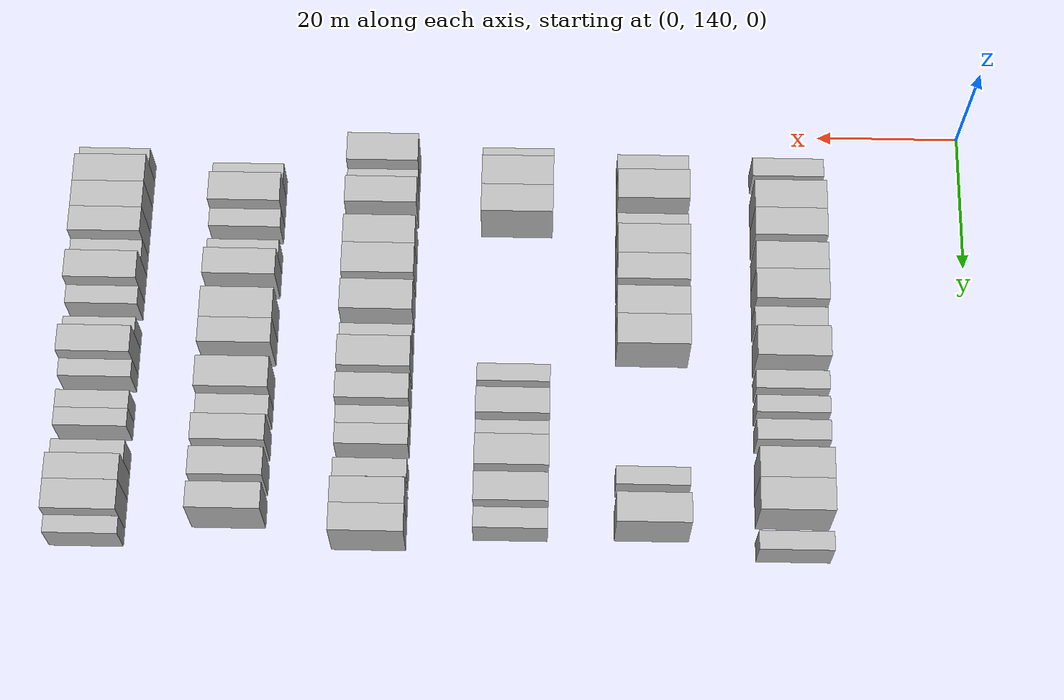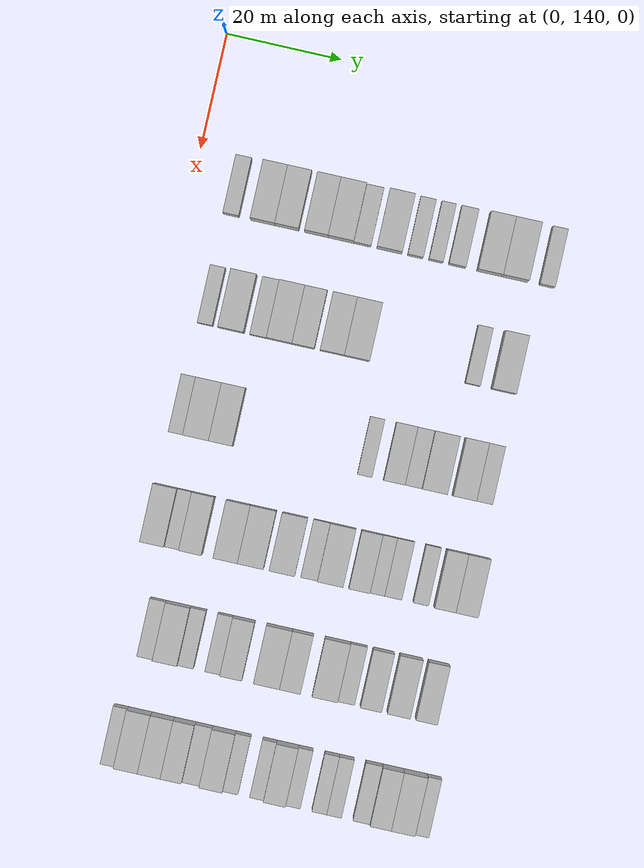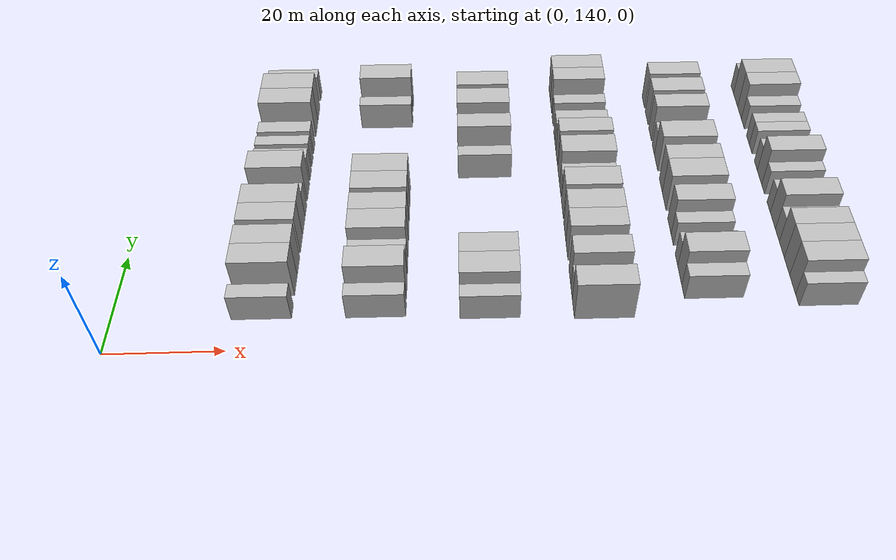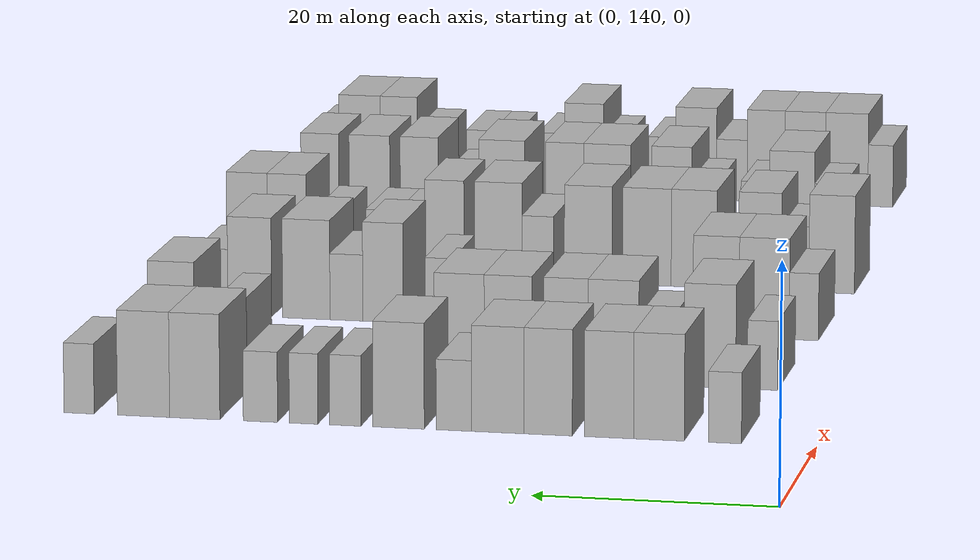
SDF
<sdf version="1.6">
 <world name="default">
  <model name="building_131">
   <static>1</static>
   <pose>25.0000 147.6071 0 0.000000 0.000000 0.000000</pose>
   <link name="link">
    <pose>0 0 3.00 0 0 0</pose>
    <collision name="collision"><geometry><box><size>10.0000 2.7516 6.0000</size></box></geometry></collision>
    <visual name="visual">
     <cast_shadows>0</cast_shadows>
     <geometry><box><size>10.0000 2.7516 6.0000</size></box></geometry>
     <material>
      <script>
       <uri>model://HANNAS_wall/materials/scripts</uri>
       <uri>model://HANNAS_wall/materials/textures</uri>
       <name>vrc/HANNAS_wall</name>
      </script>
     </material>
    </visual>
   </link>
  </model>
  <model name="building_132">
   <static>1</static>
   <pose>25.0000 153.0989 0 0.000000 0.000000 0.000000</pose>
   <link name="link">
    <pose>0 0 4.50 0 0 0</pose>
    <collision name="collision"><geometry><box><size>10.0000 4.2320 9.0000</size></box></geometry></collision>
    <visual name="visual">
     <cast_shadows>0</cast_shadows>
     <geometry><box><size>10.0000 4.2320 9.0000</size></box></geometry>
     <material>
      <script>
       <uri>model://HANNAS_wall/materials/scripts</uri>
       <uri>model://HANNAS_wall/materials/textures</uri>
       <name>vrc/HANNAS_wall</name>
      </script>
     </material>
    </visual>
   </link>
  </model>
  <model name="building_133">
   <static>1</static>
   <pose>25.0000 157.2764 0 0.000000 0.000000 0.000000</pose>
   <link name="link">
    <pose>0 0 4.50 0 0 0</pose>
    <collision name="collision"><geometry><box><size>10.0000 4.1229 9.0000</size></box></geometry></collision>
    <visual name="visual">
     <cast_shadows>0</cast_shadows>
     <geometry><box><size>10.0000 4.1229 9.0000</size></box></geometry>
     <material>
      <script>
       <uri>model://HANNAS_wall/materials/scripts</uri>
       <uri>model://HANNAS_wall/materials/textures</uri>
       <name>vrc/HANNAS_wall</name>
      </script>
     </material>
    </visual>
   </link>
  </model>
  <model name="building_134">
   <static>1</static>
   <pose>25.0000 162.3675 0 0.000000 0.000000 0.000000</pose>
   <link name="link">
    <pose>0 0 4.50 0 0 0</pose>
    <collision name="collision"><geometry><box><size>10.0000 4.0594 9.0000</size></box></geometry></collision>
    <visual name="visual">
     <cast_shadows>0</cast_shadows>
     <geometry><box><size>10.0000 4.0594 9.0000</size></box></geometry>
     <material>
      <script>
       <uri>model://HANNAS_wall/materials/scripts</uri>
       <uri>model://HANNAS_wall/materials/textures</uri>
       <name>vrc/HANNAS_wall</name>
      </script>
     </material>
    </visual>
   </link>
  </model>
  <model name="building_135">
   <static>1</static>
   <pose>25.0000 166.6109 0 0.000000 0.000000 0.000000</pose>
   <link name="link">
    <pose>0 0 4.50 0 0 0</pose>
    <collision name="collision"><geometry><box><size>10.0000 4.4273 9.0000</size></box></geometry></collision>
    <visual name="visual">
     <cast_shadows>0</cast_shadows>
     <geometry><box><size>10.0000 4.4273 9.0000</size></box></geometry>
     <material>
      <script>
       <uri>model://HANNAS_wall/materials/scripts</uri>
       <uri>model://HANNAS_wall/materials/textures</uri>
       <name>vrc/HANNAS_wall</name>
      </script>
     </material>
    </visual>
   </link>
  </model>
  <model name="building_136">
   <static>1</static>
   <pose>25.0000 170.3125 0 0.000000 0.000000 0.000000</pose>
   <link name="link">
    <pose>0 0 3.00 0 0 0</pose>
    <collision name="collision"><geometry><box><size>10.0000 2.9758 6.0000</size></box></geometry></collision>
    <visual name="visual">
     <cast_shadows>0</cast_shadows>
     <geometry><box><size>10.0000 2.9758 6.0000</size></box></geometry>
     <material>
      <script>
       <uri>model://HANNAS_wall/materials/scripts</uri>
       <uri>model://HANNAS_wall/materials/textures</uri>
       <name>vrc/HANNAS_wall</name>
      </script>
     </material>
    </visual>
   </link>
  </model>
  <model name="building_137">
   <static>1</static>
   <pose>25.0000 174.9734 0 0.000000 0.000000 0.000000</pose>
   <link name="link">
    <pose>0 0 4.50 0 0 0</pose>
    <collision name="collision"><geometry><box><size>10.0000 4.3461 9.0000</size></box></geometry></collision>
    <visual name="visual">
     <cast_shadows>0</cast_shadows>
     <geometry><box><size>10.0000 4.3461 9.0000</size></box></geometry>
     <material>
      <script>
       <uri>model://HANNAS_wall/materials/scripts</uri>
       <uri>model://HANNAS_wall/materials/textures</uri>
       <name>vrc/HANNAS_wall</name>
      </script>
     </material>
    </visual>
   </link>
  </model>
  <model name="building_138">
   <static>1</static>
   <pose>25.0000 179.4793 0 0.000000 0.000000 0.000000</pose>
   <link name="link">
    <pose>0 0 3.00 0 0 0</pose>
    <collision name="collision"><geometry><box><size>10.0000 2.6656 6.0000</size></box></geometry></collision>
    <visual name="visual">
     <cast_shadows>0</cast_shadows>
     <geometry><box><size>10.0000 2.6656 6.0000</size></box></geometry>
     <material>
      <script>
       <uri>model://HANNAS_wall/materials/scripts</uri>
       <uri>model://HANNAS_wall/materials/textures</uri>
       <name>vrc/HANNAS_wall</name>
      </script>
     </material>
    </visual>
   </link>
  </model>
  <model name="building_139">
   <static>1</static>
   <pose>25.0000 183.0311 0 0.000000 0.000000 0.000000</pose>
   <link name="link">
    <pose>0 0 3.00 0 0 0</pose>
    <collision name="collision"><geometry><box><size>10.0000 2.4381 6.0000</size></box></geometry></collision>
    <visual name="visual">
     <cast_shadows>0</cast_shadows>
     <geometry><box><size>10.0000 2.4381 6.0000</size></box></geometry>
     <material>
      <script>
       <uri>model://HANNAS_wall/materials/scripts</uri>
       <uri>model://HANNAS_wall/materials/textures</uri>
       <name>vrc/HANNAS_wall</name>
      </script>
     </material>
    </visual>
   </link>
  </model>
  <model name="building_140">
   <static>1</static>
   <pose>25.0000 186.7110 0 0.000000 0.000000 0.000000</pose>
   <link name="link">
    <pose>0 0 3.00 0 0 0</pose>
    <collision name="collision"><geometry><box><size>10.0000 2.9216 6.0000</size></box></geometry></collision>
    <visual name="visual">
     <cast_shadows>0</cast_shadows>
     <geometry><box><size>10.0000 2.9216 6.0000</size></box></geometry>
     <material>
      <script>
       <uri>model://HANNAS_wall/materials/scripts</uri>
       <uri>model://HANNAS_wall/materials/textures</uri>
       <name>vrc/HANNAS_wall</name>
      </script>
     </material>
    </visual>
   </link>
  </model>
  <model name="building_141">
   <static>1</static>
   <pose>25.0000 192.3210 0 0.000000 0.000000 0.000000</pose>
   <link name="link">
    <pose>0 0 4.50 0 0 0</pose>
    <collision name="collision"><geometry><box><size>10.0000 4.2984 9.0000</size></box></geometry></collision>
    <visual name="visual">
     <cast_shadows>0</cast_shadows>
     <geometry><box><size>10.0000 4.2984 9.0000</size></box></geometry>
     <material>
      <script>
       <uri>model://HANNAS_wall/materials/scripts</uri>
       <uri>model://HANNAS_wall/materials/textures</uri>
       <name>vrc/HANNAS_wall</name>
      </script>
     </material>
    </visual>
   </link>
  </model>
  <model name="building_142">
   <static>1</static>
   <pose>25.0000 196.7118 0 0.000000 0.000000 0.000000</pose>
   <link name="link">
    <pose>0 0 4.50 0 0 0</pose>
    <collision name="collision"><geometry><box><size>10.0000 4.4833 9.0000</size></box></geometry></collision>
    <visual name="visual">
     <cast_shadows>0</cast_shadows>
     <geometry><box><size>10.0000 4.4833 9.0000</size></box></geometry>
     <material>
      <script>
       <uri>model://HANNAS_wall/materials/scripts</uri>
       <uri>model://HANNAS_wall/materials/textures</uri>
       <name>vrc/HANNAS_wall</name>
      </script>
     </material>
    </visual>
   </link>
  </model>
  <model name="building_143">
   <static>1</static>
   <pose>25.0000 202.2485 0 0.000000 0.000000 0.000000</pose>
   <link name="link">
    <pose>0 0 3.00 0 0 0</pose>
    <collision name="collision"><geometry><box><size>10.0000 2.5902 6.0000</size></box></geometry></collision>
    <visual name="visual">
     <cast_shadows>0</cast_shadows>
     <geometry><box><size>10.0000 2.5902 6.0000</size></box></geometry>
     <material>
      <script>
       <uri>model://HANNAS_wall/materials/scripts</uri>
       <uri>model://HANNAS_wall/materials/textures</uri>
       <name>vrc/HANNAS_wall</name>
      </script>
     </material>
    </visual>
   </link>
  </model>
  <model name="building_300">
   <static>1</static>
   <pose>44.0000 147.4087 0 0.000000 0.000000 0.000000</pose>
   <link name="link">
    <pose>0 0 3.00 0 0 0</pose>
    <collision name="collision"><geometry><box><size>10.0000 2.6038 6.0000</size></box></geometry></collision>
    <visual name="visual">
     <cast_shadows>0</cast_shadows>
     <geometry><box><size>10.0000 2.6038 6.0000</size></box></geometry>
     <material>
      <script>
       <uri>model://HANNAS_wall/materials/scripts</uri>
       <uri>model://HANNAS_wall/materials/textures</uri>
       <name>vrc/HANNAS_wall</name>
      </script>
     </material>
    </visual>
   </link>
  </model>
  <model name="building_301">
   <static>1</static>
   <pose>44.0000 151.9238 0 0.000000 0.000000 0.000000</pose>
   <link name="link">
    <pose>0 0 4.50 0 0 0</pose>
    <collision name="collision"><geometry><box><size>10.0000 4.4264 9.0000</size></box></geometry></collision>
    <visual name="visual">
     <cast_shadows>0</cast_shadows>
     <geometry><box><size>10.0000 4.4264 9.0000</size></box></geometry>
     <material>
      <script>
       <uri>model://HANNAS_wall/materials/scripts</uri>
       <uri>model://HANNAS_wall/materials/textures</uri>
       <name>vrc/HANNAS_wall</name>
      </script>
     </material>
    </visual>
   </link>
  </model>
  <model name="building_302">
   <static>1</static>
   <pose>44.0000 156.5995 0 0.000000 0.000000 0.000000</pose>
   <link name="link">
    <pose>0 0 3.00 0 0 0</pose>
    <collision name="collision"><geometry><box><size>10.0000 2.9250 6.0000</size></box></geometry></collision>
    <visual name="visual">
     <cast_shadows>0</cast_shadows>
     <geometry><box><size>10.0000 2.9250 6.0000</size></box></geometry>
     <material>
      <script>
       <uri>model://HANNAS_wall/materials/scripts</uri>
       <uri>model://HANNAS_wall/materials/textures</uri>
       <name>vrc/HANNAS_wall</name>
      </script>
     </material>
    </visual>
   </link>
  </model>
  <model name="building_303">
   <static>1</static>
   <pose>44.0000 160.2493 0 0.000000 0.000000 0.000000</pose>
   <link name="link">
    <pose>0 0 4.50 0 0 0</pose>
    <collision name="collision"><geometry><box><size>10.0000 4.3747 9.0000</size></box></geometry></collision>
    <visual name="visual">
     <cast_shadows>0</cast_shadows>
     <geometry><box><size>10.0000 4.3747 9.0000</size></box></geometry>
     <material>
      <script>
       <uri>model://HANNAS_wall/materials/scripts</uri>
       <uri>model://HANNAS_wall/materials/textures</uri>
       <name>vrc/HANNAS_wall</name>
      </script>
     </material>
    </visual>
   </link>
  </model>
  <model name="building_304">
   <static>1</static>
   <pose>44.0000 164.3694 0 0.000000 0.000000 0.000000</pose>
   <link name="link">
    <pose>0 0 4.50 0 0 0</pose>
    <collision name="collision"><geometry><box><size>10.0000 3.8655 9.0000</size></box></geometry></collision>
    <visual name="visual">
     <cast_shadows>0</cast_shadows>
     <geometry><box><size>10.0000 3.8655 9.0000</size></box></geometry>
     <material>
      <script>
       <uri>model://HANNAS_wall/materials/scripts</uri>
       <uri>model://HANNAS_wall/materials/textures</uri>
       <name>vrc/HANNAS_wall</name>
      </script>
     </material>
    </visual>
   </link>
  </model>
  <model name="building_305">
   <static>1</static>
   <pose>44.0000 169.3841 0 0.000000 0.000000 0.000000</pose>
   <link name="link">
    <pose>0 0 4.50 0 0 0</pose>
    <collision name="collision"><geometry><box><size>10.0000 4.1638 9.0000</size></box></geometry></collision>
    <visual name="visual">
     <cast_shadows>0</cast_shadows>
     <geometry><box><size>10.0000 4.1638 9.0000</size></box></geometry>
     <material>
      <script>
       <uri>model://HANNAS_wall/materials/scripts</uri>
       <uri>model://HANNAS_wall/materials/textures</uri>
       <name>vrc/HANNAS_wall</name>
      </script>
     </material>
    </visual>
   </link>
  </model>
  <model name="building_306">
   <static>1</static>
   <pose>44.0000 173.6427 0 0.000000 0.000000 0.000000</pose>
   <link name="link">
    <pose>0 0 4.50 0 0 0</pose>
    <collision name="collision"><geometry><box><size>10.0000 4.3534 9.0000</size></box></geometry></collision>
    <visual name="visual">
     <cast_shadows>0</cast_shadows>
     <geometry><box><size>10.0000 4.3534 9.0000</size></box></geometry>
     <material>
      <script>
       <uri>model://HANNAS_wall/materials/scripts</uri>
       <uri>model://HANNAS_wall/materials/textures</uri>
       <name>vrc/HANNAS_wall</name>
      </script>
     </material>
    </visual>
   </link>
  </model>
  <model name="building_307">
   <static>1</static>
   <pose>44.0000 193.6324 0 0.000000 0.000000 0.000000</pose>
   <link name="link">
    <pose>0 0 3.00 0 0 0</pose>
    <collision name="collision"><geometry><box><size>10.0000 2.5420 6.0000</size></box></geometry></collision>
    <visual name="visual">
     <cast_shadows>0</cast_shadows>
     <geometry><box><size>10.0000 2.5420 6.0000</size></box></geometry>
     <material>
      <script>
       <uri>model://HANNAS_wall/materials/scripts</uri>
       <uri>model://HANNAS_wall/materials/textures</uri>
       <name>vrc/HANNAS_wall</name>
      </script>
     </material>
    </visual>
   </link>
  </model>
  <model name="building_308">
   <static>1</static>
   <pose>44.0000 198.9571 0 0.000000 0.000000 0.000000</pose>
   <link name="link">
    <pose>0 0 4.50 0 0 0</pose>
    <collision name="collision"><geometry><box><size>10.0000 4.1074 9.0000</size></box></geometry></collision>
    <visual name="visual">
     <cast_shadows>0</cast_shadows>
     <geometry><box><size>10.0000 4.1074 9.0000</size></box></geometry>
     <material>
      <script>
       <uri>model://HANNAS_wall/materials/scripts</uri>
       <uri>model://HANNAS_wall/materials/textures</uri>
       <name>vrc/HANNAS_wall</name>
      </script>
     </material>
    </visual>
   </link>
  </model>
  <model name="building_466">
   <static>1</static>
   <pose>63.0000 146.6821 0 0.000000 0.000000 0.000000</pose>
   <link name="link">
    <pose>0 0 3.00 0 0 0</pose>
    <collision name="collision"><geometry><box><size>10.0000 2.5785 6.0000</size></box></geometry></collision>
    <visual name="visual">
     <cast_shadows>0</cast_shadows>
     <geometry><box><size>10.0000 2.5785 6.0000</size></box></geometry>
     <material>
      <script>
       <uri>model://HANNAS_wall/materials/scripts</uri>
       <uri>model://HANNAS_wall/materials/textures</uri>
       <name>vrc/HANNAS_wall</name>
      </script>
     </material>
    </visual>
   </link>
  </model>
  <model name="building_467">
   <static>1</static>
   <pose>63.0000 150.1913 0 0.000000 0.000000 0.000000</pose>
   <link name="link">
    <pose>0 0 4.50 0 0 0</pose>
    <collision name="collision"><geometry><box><size>10.0000 4.4400 9.0000</size></box></geometry></collision>
    <visual name="visual">
     <cast_shadows>0</cast_shadows>
     <geometry><box><size>10.0000 4.4400 9.0000</size></box></geometry>
     <material>
      <script>
       <uri>model://HANNAS_wall/materials/scripts</uri>
       <uri>model://HANNAS_wall/materials/textures</uri>
       <name>vrc/HANNAS_wall</name>
      </script>
     </material>
    </visual>
   </link>
  </model>
  <model name="building_468">
   <static>1</static>
   <pose>63.0000 154.4617 0 0.000000 0.000000 0.000000</pose>
   <link name="link">
    <pose>0 0 4.50 0 0 0</pose>
    <collision name="collision"><geometry><box><size>10.0000 4.1007 9.0000</size></box></geometry></collision>
    <visual name="visual">
     <cast_shadows>0</cast_shadows>
     <geometry><box><size>10.0000 4.1007 9.0000</size></box></geometry>
     <material>
      <script>
       <uri>model://HANNAS_wall/materials/scripts</uri>
       <uri>model://HANNAS_wall/materials/textures</uri>
       <name>vrc/HANNAS_wall</name>
      </script>
     </material>
    </visual>
   </link>
  </model>
  <model name="building_469">
   <static>1</static>
   <pose>63.0000 179.2564 0 0.000000 0.000000 0.000000</pose>
   <link name="link">
    <pose>0 0 3.00 0 0 0</pose>
    <collision name="collision"><geometry><box><size>10.0000 2.4963 6.0000</size></box></geometry></collision>
    <visual name="visual">
     <cast_shadows>0</cast_shadows>
     <geometry><box><size>10.0000 2.4963 6.0000</size></box></geometry>
     <material>
      <script>
       <uri>model://HANNAS_wall/materials/scripts</uri>
       <uri>model://HANNAS_wall/materials/textures</uri>
       <name>vrc/HANNAS_wall</name>
      </script>
     </material>
    </visual>
   </link>
  </model>
  <model name="building_470">
   <static>1</static>
   <pose>63.0000 184.3286 0 0.000000 0.000000 0.000000</pose>
   <link name="link">
    <pose>0 0 4.50 0 0 0</pose>
    <collision name="collision"><geometry><box><size>10.0000 3.6481 9.0000</size></box></geometry></collision>
    <visual name="visual">
     <cast_shadows>0</cast_shadows>
     <geometry><box><size>10.0000 3.6481 9.0000</size></box></geometry>
     <material>
      <script>
       <uri>model://HANNAS_wall/materials/scripts</uri>
       <uri>model://HANNAS_wall/materials/textures</uri>
       <name>vrc/HANNAS_wall</name>
      </script>
     </material>
    </visual>
   </link>
  </model>
  <model name="building_471">
   <static>1</static>
   <pose>63.0000 187.6399 0 0.000000 0.000000 0.000000</pose>
   <link name="link">
    <pose>0 0 3.00 0 0 0</pose>
    <collision name="collision"><geometry><box><size>10.0000 2.9745 6.0000</size></box></geometry></collision>
    <visual name="visual">
     <cast_shadows>0</cast_shadows>
     <geometry><box><size>10.0000 2.9745 6.0000</size></box></geometry>
     <material>
      <script>
       <uri>model://HANNAS_wall/materials/scripts</uri>
       <uri>model://HANNAS_wall/materials/textures</uri>
       <name>vrc/HANNAS_wall</name>
      </script>
     </material>
    </visual>
   </link>
  </model>
  <model name="building_472">
   <static>1</static>
   <pose>63.0000 191.2795 0 0.000000 0.000000 0.000000</pose>
   <link name="link">
    <pose>0 0 4.50 0 0 0</pose>
    <collision name="collision"><geometry><box><size>10.0000 4.3048 9.0000</size></box></geometry></collision>
    <visual name="visual">
     <cast_shadows>0</cast_shadows>
     <geometry><box><size>10.0000 4.3048 9.0000</size></box></geometry>
     <material>
      <script>
       <uri>model://HANNAS_wall/materials/scripts</uri>
       <uri>model://HANNAS_wall/materials/textures</uri>
       <name>vrc/HANNAS_wall</name>
      </script>
     </material>
    </visual>
   </link>
  </model>
  <model name="building_473">
   <static>1</static>
   <pose>63.0000 196.4252 0 0.000000 0.000000 0.000000</pose>
   <link name="link">
    <pose>0 0 4.50 0 0 0</pose>
    <collision name="collision"><geometry><box><size>10.0000 3.9866 9.0000</size></box></geometry></collision>
    <visual name="visual">
     <cast_shadows>0</cast_shadows>
     <geometry><box><size>10.0000 3.9866 9.0000</size></box></geometry>
     <material>
      <script>
       <uri>model://HANNAS_wall/materials/scripts</uri>
       <uri>model://HANNAS_wall/materials/textures</uri>
       <name>vrc/HANNAS_wall</name>
      </script>
     </material>
    </visual>
   </link>
  </model>
  <model name="building_474">
   <static>1</static>
   <pose>63.0000 199.8594 0 0.000000 0.000000 0.000000</pose>
   <link name="link">
    <pose>0 0 3.00 0 0 0</pose>
    <collision name="collision"><geometry><box><size>10.0000 2.8819 6.0000</size></box></geometry></collision>
    <visual name="visual">
     <cast_shadows>0</cast_shadows>
     <geometry><box><size>10.0000 2.8819 6.0000</size></box></geometry>
     <material>
      <script>
       <uri>model://HANNAS_wall/materials/scripts</uri>
       <uri>model://HANNAS_wall/materials/textures</uri>
       <name>vrc/HANNAS_wall</name>
      </script>
     </material>
    </visual>
   </link>
  </model>
  <model name="building_627">
   <static>1</static>
   <pose>82.0000 146.9500 0 0.000000 0.000000 0.000000</pose>
   <link name="link">
    <pose>0 0 4.50 0 0 0</pose>
    <collision name="collision"><geometry><box><size>10.0000 4.1528 9.0000</size></box></geometry></collision>
    <visual name="visual">
     <cast_shadows>0</cast_shadows>
     <geometry><box><size>10.0000 4.1528 9.0000</size></box></geometry>
     <material>
      <script>
       <uri>model://HANNAS_wall/materials/scripts</uri>
       <uri>model://HANNAS_wall/materials/textures</uri>
       <name>vrc/HANNAS_wall</name>
      </script>
     </material>
    </visual>
   </link>
  </model>
  <model name="building_628">
   <static>1</static>
   <pose>82.0000 150.2920 0 0.000000 0.000000 0.000000</pose>
   <link name="link">
    <pose>0 0 3.00 0 0 0</pose>
    <collision name="collision"><geometry><box><size>10.0000 2.5312 6.0000</size></box></geometry></collision>
    <visual name="visual">
     <cast_shadows>0</cast_shadows>
     <geometry><box><size>10.0000 2.5312 6.0000</size></box></geometry>
     <material>
      <script>
       <uri>model://HANNAS_wall/materials/scripts</uri>
       <uri>model://HANNAS_wall/materials/textures</uri>
       <name>vrc/HANNAS_wall</name>
      </script>
     </material>
    </visual>
   </link>
  </model>
  <model name="building_629">
   <static>1</static>
   <pose>82.0000 153.5065 0 0.000000 0.000000 0.000000</pose>
   <link name="link">
    <pose>0 0 4.50 0 0 0</pose>
    <collision name="collision"><geometry><box><size>10.0000 3.8978 9.0000</size></box></geometry></collision>
    <visual name="visual">
     <cast_shadows>0</cast_shadows>
     <geometry><box><size>10.0000 3.8978 9.0000</size></box></geometry>
     <material>
      <script>
       <uri>model://HANNAS_wall/materials/scripts</uri>
       <uri>model://HANNAS_wall/materials/textures</uri>
       <name>vrc/HANNAS_wall</name>
      </script>
     </material>
    </visual>
   </link>
  </model>
  <model name="building_630">
   <static>1</static>
   <pose>82.0000 159.5479 0 0.000000 0.000000 0.000000</pose>
   <link name="link">
    <pose>0 0 4.50 0 0 0</pose>
    <collision name="collision"><geometry><box><size>10.0000 4.1850 9.0000</size></box></geometry></collision>
    <visual name="visual">
     <cast_shadows>0</cast_shadows>
     <geometry><box><size>10.0000 4.1850 9.0000</size></box></geometry>
     <material>
      <script>
       <uri>model://HANNAS_wall/materials/scripts</uri>
       <uri>model://HANNAS_wall/materials/textures</uri>
       <name>vrc/HANNAS_wall</name>
      </script>
     </material>
    </visual>
   </link>
  </model>
  <model name="building_631">
   <static>1</static>
   <pose>82.0000 163.8675 0 0.000000 0.000000 0.000000</pose>
   <link name="link">
    <pose>0 0 4.50 0 0 0</pose>
    <collision name="collision"><geometry><box><size>10.0000 4.4541 9.0000</size></box></geometry></collision>
    <visual name="visual">
     <cast_shadows>0</cast_shadows>
     <geometry><box><size>10.0000 4.4541 9.0000</size></box></geometry>
     <material>
      <script>
       <uri>model://HANNAS_wall/materials/scripts</uri>
       <uri>model://HANNAS_wall/materials/textures</uri>
       <name>vrc/HANNAS_wall</name>
      </script>
     </material>
    </visual>
   </link>
  </model>
  <model name="building_632">
   <static>1</static>
   <pose>82.0000 169.2915 0 0.000000 0.000000 0.000000</pose>
   <link name="link">
    <pose>0 0 4.50 0 0 0</pose>
    <collision name="collision"><geometry><box><size>10.0000 4.3939 9.0000</size></box></geometry></collision>
    <visual name="visual">
     <cast_shadows>0</cast_shadows>
     <geometry><box><size>10.0000 4.3939 9.0000</size></box></geometry>
     <material>
      <script>
       <uri>model://HANNAS_wall/materials/scripts</uri>
       <uri>model://HANNAS_wall/materials/textures</uri>
       <name>vrc/HANNAS_wall</name>
      </script>
     </material>
    </visual>
   </link>
  </model>
  <model name="building_633">
   <static>1</static>
   <pose>82.0000 173.9410 0 0.000000 0.000000 0.000000</pose>
   <link name="link">
    <pose>0 0 3.00 0 0 0</pose>
    <collision name="collision"><geometry><box><size>10.0000 2.9052 6.0000</size></box></geometry></collision>
    <visual name="visual">
     <cast_shadows>0</cast_shadows>
     <geometry><box><size>10.0000 2.9052 6.0000</size></box></geometry>
     <material>
      <script>
       <uri>model://HANNAS_wall/materials/scripts</uri>
       <uri>model://HANNAS_wall/materials/textures</uri>
       <name>vrc/HANNAS_wall</name>
      </script>
     </material>
    </visual>
   </link>
  </model>
  <model name="building_634">
   <static>1</static>
   <pose>82.0000 177.5965 0 0.000000 0.000000 0.000000</pose>
   <link name="link">
    <pose>0 0 4.50 0 0 0</pose>
    <collision name="collision"><geometry><box><size>10.0000 4.4059 9.0000</size></box></geometry></collision>
    <visual name="visual">
     <cast_shadows>0</cast_shadows>
     <geometry><box><size>10.0000 4.4059 9.0000</size></box></geometry>
     <material>
      <script>
       <uri>model://HANNAS_wall/materials/scripts</uri>
       <uri>model://HANNAS_wall/materials/textures</uri>
       <name>vrc/HANNAS_wall</name>
      </script>
     </material>
    </visual>
   </link>
  </model>
  <model name="building_635">
   <static>1</static>
   <pose>82.0000 182.6130 0 0.000000 0.000000 0.000000</pose>
   <link name="link">
    <pose>0 0 4.50 0 0 0</pose>
    <collision name="collision"><geometry><box><size>10.0000 3.6271 9.0000</size></box></geometry></collision>
    <visual name="visual">
     <cast_shadows>0</cast_shadows>
     <geometry><box><size>10.0000 3.6271 9.0000</size></box></geometry>
     <material>
      <script>
       <uri>model://HANNAS_wall/materials/scripts</uri>
       <uri>model://HANNAS_wall/materials/textures</uri>
       <name>vrc/HANNAS_wall</name>
      </script>
     </material>
    </visual>
   </link>
  </model>
  <model name="building_636">
   <static>1</static>
   <pose>82.0000 185.6946 0 0.000000 0.000000 0.000000</pose>
   <link name="link">
    <pose>0 0 3.00 0 0 0</pose>
    <collision name="collision"><geometry><box><size>10.0000 2.5360 6.0000</size></box></geometry></collision>
    <visual name="visual">
     <cast_shadows>0</cast_shadows>
     <geometry><box><size>10.0000 2.5360 6.0000</size></box></geometry>
     <material>
      <script>
       <uri>model://HANNAS_wall/materials/scripts</uri>
       <uri>model://HANNAS_wall/materials/textures</uri>
       <name>vrc/HANNAS_wall</name>
      </script>
     </material>
    </visual>
   </link>
  </model>
  <model name="building_637">
   <static>1</static>
   <pose>82.0000 188.4401 0 0.000000 0.000000 0.000000</pose>
   <link name="link">
    <pose>0 0 3.00 0 0 0</pose>
    <collision name="collision"><geometry><box><size>10.0000 2.9550 6.0000</size></box></geometry></collision>
    <visual name="visual">
     <cast_shadows>0</cast_shadows>
     <geometry><box><size>10.0000 2.9550 6.0000</size></box></geometry>
     <material>
      <script>
       <uri>model://HANNAS_wall/materials/scripts</uri>
       <uri>model://HANNAS_wall/materials/textures</uri>
       <name>vrc/HANNAS_wall</name>
      </script>
     </material>
    </visual>
   </link>
  </model>
  <model name="building_638">
   <static>1</static>
   <pose>82.0000 193.2173 0 0.000000 0.000000 0.000000</pose>
   <link name="link">
    <pose>0 0 3.00 0 0 0</pose>
    <collision name="collision"><geometry><box><size>10.0000 2.5993 6.0000</size></box></geometry></collision>
    <visual name="visual">
     <cast_shadows>0</cast_shadows>
     <geometry><box><size>10.0000 2.5993 6.0000</size></box></geometry>
     <material>
      <script>
       <uri>model://HANNAS_wall/materials/scripts</uri>
       <uri>model://HANNAS_wall/materials/textures</uri>
       <name>vrc/HANNAS_wall</name>
      </script>
     </material>
    </visual>
   </link>
  </model>
  <model name="building_639">
   <static>1</static>
   <pose>82.0000 197.3407 0 0.000000 0.000000 0.000000</pose>
   <link name="link">
    <pose>0 0 4.50 0 0 0</pose>
    <collision name="collision"><geometry><box><size>10.0000 3.6477 9.0000</size></box></geometry></collision>
    <visual name="visual">
     <cast_shadows>0</cast_shadows>
     <geometry><box><size>10.0000 3.6477 9.0000</size></box></geometry>
     <material>
      <script>
       <uri>model://HANNAS_wall/materials/scripts</uri>
       <uri>model://HANNAS_wall/materials/textures</uri>
       <name>vrc/HANNAS_wall</name>
      </script>
     </material>
    </visual>
   </link>
  </model>
  <model name="building_640">
   <static>1</static>
   <pose>82.0000 201.0762 0 0.000000 0.000000 0.000000</pose>
   <link name="link">
    <pose>0 0 4.50 0 0 0</pose>
    <collision name="collision"><geometry><box><size>10.0000 3.8234 9.0000</size></box></geometry></collision>
    <visual name="visual">
     <cast_shadows>0</cast_shadows>
     <geometry><box><size>10.0000 3.8234 9.0000</size></box></geometry>
     <material>
      <script>
       <uri>model://HANNAS_wall/materials/scripts</uri>
       <uri>model://HANNAS_wall/materials/textures</uri>
       <name>vrc/HANNAS_wall</name>
      </script>
     </material>
    </visual>
   </link>
  </model>
  <model name="building_794">
   <static>1</static>
   <pose>101.0000 149.9221 0 0.000000 0.000000 0.000000</pose>
   <link name="link">
    <pose>0 0 3.00 0 0 0</pose>
    <collision name="collision"><geometry><box><size>10.0000 2.8011 6.0000</size></box></geometry></collision>
    <visual name="visual">
     <cast_shadows>0</cast_shadows>
     <geometry><box><size>10.0000 2.8011 6.0000</size></box></geometry>
     <material>
      <script>
       <uri>model://HANNAS_wall/materials/scripts</uri>
       <uri>model://HANNAS_wall/materials/textures</uri>
       <name>vrc/HANNAS_wall</name>
      </script>
     </material>
    </visual>
   </link>
  </model>
  <model name="building_795">
   <static>1</static>
   <pose>101.0000 153.4415 0 0.000000 0.000000 0.000000</pose>
   <link name="link">
    <pose>0 0 4.50 0 0 0</pose>
    <collision name="collision"><geometry><box><size>10.0000 4.2378 9.0000</size></box></geometry></collision>
    <visual name="visual">
     <cast_shadows>0</cast_shadows>
     <geometry><box><size>10.0000 4.2378 9.0000</size></box></geometry>
     <material>
      <script>
       <uri>model://HANNAS_wall/materials/scripts</uri>
       <uri>model://HANNAS_wall/materials/textures</uri>
       <name>vrc/HANNAS_wall</name>
      </script>
     </material>
    </visual>
   </link>
  </model>
  <model name="building_796">
   <static>1</static>
   <pose>101.0000 156.9055 0 0.000000 0.000000 0.000000</pose>
   <link name="link">
    <pose>0 0 3.00 0 0 0</pose>
    <collision name="collision"><geometry><box><size>10.0000 2.6902 6.0000</size></box></geometry></collision>
    <visual name="visual">
     <cast_shadows>0</cast_shadows>
     <geometry><box><size>10.0000 2.6902 6.0000</size></box></geometry>
     <material>
      <script>
       <uri>model://HANNAS_wall/materials/scripts</uri>
       <uri>model://HANNAS_wall/materials/textures</uri>
       <name>vrc/HANNAS_wall</name>
      </script>
     </material>
    </visual>
   </link>
  </model>
  <model name="building_797">
   <static>1</static>
   <pose>101.0000 161.5669 0 0.000000 0.000000 0.000000</pose>
   <link name="link">
    <pose>0 0 3.00 0 0 0</pose>
    <collision name="collision"><geometry><box><size>10.0000 2.6326 6.0000</size></box></geometry></collision>
    <visual name="visual">
     <cast_shadows>0</cast_shadows>
     <geometry><box><size>10.0000 2.6326 6.0000</size></box></geometry>
     <material>
      <script>
       <uri>model://HANNAS_wall/materials/scripts</uri>
       <uri>model://HANNAS_wall/materials/textures</uri>
       <name>vrc/HANNAS_wall</name>
      </script>
     </material>
    </visual>
   </link>
  </model>
  <model name="building_798">
   <static>1</static>
   <pose>101.0000 164.7773 0 0.000000 0.000000 0.000000</pose>
   <link name="link">
    <pose>0 0 4.50 0 0 0</pose>
    <collision name="collision"><geometry><box><size>10.0000 3.7881 9.0000</size></box></geometry></collision>
    <visual name="visual">
     <cast_shadows>0</cast_shadows>
     <geometry><box><size>10.0000 3.7881 9.0000</size></box></geometry>
     <material>
      <script>
       <uri>model://HANNAS_wall/materials/scripts</uri>
       <uri>model://HANNAS_wall/materials/textures</uri>
       <name>vrc/HANNAS_wall</name>
      </script>
     </material>
    </visual>
   </link>
  </model>
  <model name="building_799">
   <static>1</static>
   <pose>101.0000 170.9119 0 0.000000 0.000000 0.000000</pose>
   <link name="link">
    <pose>0 0 4.50 0 0 0</pose>
    <collision name="collision"><geometry><box><size>10.0000 4.4812 9.0000</size></box></geometry></collision>
    <visual name="visual">
     <cast_shadows>0</cast_shadows>
     <geometry><box><size>10.0000 4.4812 9.0000</size></box></geometry>
     <material>
      <script>
       <uri>model://HANNAS_wall/materials/scripts</uri>
       <uri>model://HANNAS_wall/materials/textures</uri>
       <name>vrc/HANNAS_wall</name>
      </script>
     </material>
    </visual>
   </link>
  </model>
  <model name="building_800">
   <static>1</static>
   <pose>101.0000 174.9560 0 0.000000 0.000000 0.000000</pose>
   <link name="link">
    <pose>0 0 4.50 0 0 0</pose>
    <collision name="collision"><geometry><box><size>10.0000 3.6070 9.0000</size></box></geometry></collision>
    <visual name="visual">
     <cast_shadows>0</cast_shadows>
     <geometry><box><size>10.0000 3.6070 9.0000</size></box></geometry>
     <material>
      <script>
       <uri>model://HANNAS_wall/materials/scripts</uri>
       <uri>model://HANNAS_wall/materials/textures</uri>
       <name>vrc/HANNAS_wall</name>
      </script>
     </material>
    </visual>
   </link>
  </model>
  <model name="building_801">
   <static>1</static>
   <pose>101.0000 180.9604 0 0.000000 0.000000 0.000000</pose>
   <link name="link">
    <pose>0 0 4.50 0 0 0</pose>
    <collision name="collision"><geometry><box><size>10.0000 4.4018 9.0000</size></box></geometry></collision>
    <visual name="visual">
     <cast_shadows>0</cast_shadows>
     <geometry><box><size>10.0000 4.4018 9.0000</size></box></geometry>
     <material>
      <script>
       <uri>model://HANNAS_wall/materials/scripts</uri>
       <uri>model://HANNAS_wall/materials/textures</uri>
       <name>vrc/HANNAS_wall</name>
      </script>
     </material>
    </visual>
   </link>
  </model>
  <model name="building_802">
   <static>1</static>
   <pose>101.0000 184.6098 0 0.000000 0.000000 0.000000</pose>
   <link name="link">
    <pose>0 0 3.00 0 0 0</pose>
    <collision name="collision"><geometry><box><size>10.0000 2.8969 6.0000</size></box></geometry></collision>
    <visual name="visual">
     <cast_shadows>0</cast_shadows>
     <geometry><box><size>10.0000 2.8969 6.0000</size></box></geometry>
     <material>
      <script>
       <uri>model://HANNAS_wall/materials/scripts</uri>
       <uri>model://HANNAS_wall/materials/textures</uri>
       <name>vrc/HANNAS_wall</name>
      </script>
     </material>
    </visual>
   </link>
  </model>
  <model name="building_803">
   <static>1</static>
   <pose>101.0000 188.8710 0 0.000000 0.000000 0.000000</pose>
   <link name="link">
    <pose>0 0 4.50 0 0 0</pose>
    <collision name="collision"><geometry><box><size>10.0000 3.6254 9.0000</size></box></geometry></collision>
    <visual name="visual">
     <cast_shadows>0</cast_shadows>
     <geometry><box><size>10.0000 3.6254 9.0000</size></box></geometry>
     <material>
      <script>
       <uri>model://HANNAS_wall/materials/scripts</uri>
       <uri>model://HANNAS_wall/materials/textures</uri>
       <name>vrc/HANNAS_wall</name>
      </script>
     </material>
    </visual>
   </link>
  </model>
  <model name="building_804">
   <static>1</static>
   <pose>101.0000 193.6428 0 0.000000 0.000000 0.000000</pose>
   <link name="link">
    <pose>0 0 4.50 0 0 0</pose>
    <collision name="collision"><geometry><box><size>10.0000 3.9182 9.0000</size></box></geometry></collision>
    <visual name="visual">
     <cast_shadows>0</cast_shadows>
     <geometry><box><size>10.0000 3.9182 9.0000</size></box></geometry>
     <material>
      <script>
       <uri>model://HANNAS_wall/materials/scripts</uri>
       <uri>model://HANNAS_wall/materials/textures</uri>
       <name>vrc/HANNAS_wall</name>
      </script>
     </material>
    </visual>
   </link>
  </model>
  <model name="building_805">
   <static>1</static>
   <pose>101.0000 198.4254 0 0.000000 0.000000 0.000000</pose>
   <link name="link">
    <pose>0 0 4.50 0 0 0</pose>
    <collision name="collision"><geometry><box><size>10.0000 3.6471 9.0000</size></box></geometry></collision>
    <visual name="visual">
     <cast_shadows>0</cast_shadows>
     <geometry><box><size>10.0000 3.6471 9.0000</size></box></geometry>
     <material>
      <script>
       <uri>model://HANNAS_wall/materials/scripts</uri>
       <uri>model://HANNAS_wall/materials/textures</uri>
       <name>vrc/HANNAS_wall</name>
      </script>
     </material>
    </visual>
   </link>
  </model>
  <model name="building_973">
   <static>1</static>
   <pose>120.0000 147.7083 0 0.000000 0.000000 0.000000</pose>
   <link name="link">
    <pose>0 0 3.00 0 0 0</pose>
    <collision name="collision"><geometry><box><size>10.0000 2.4087 6.0000</size></box></geometry></collision>
    <visual name="visual">
     <cast_shadows>0</cast_shadows>
     <geometry><box><size>10.0000 2.4087 6.0000</size></box></geometry>
     <material>
      <script>
       <uri>model://HANNAS_wall/materials/scripts</uri>
       <uri>model://HANNAS_wall/materials/textures</uri>
       <name>vrc/HANNAS_wall</name>
      </script>
     </material>
    </visual>
   </link>
  </model>
  <model name="building_974">
   <static>1</static>
   <pose>120.0000 150.9758 0 0.000000 0.000000 0.000000</pose>
   <link name="link">
    <pose>0 0 4.50 0 0 0</pose>
    <collision name="collision"><geometry><box><size>10.0000 4.1263 9.0000</size></box></geometry></collision>
    <visual name="visual">
     <cast_shadows>0</cast_shadows>
     <geometry><box><size>10.0000 4.1263 9.0000</size></box></geometry>
     <material>
      <script>
       <uri>model://HANNAS_wall/materials/scripts</uri>
       <uri>model://HANNAS_wall/materials/textures</uri>
       <name>vrc/HANNAS_wall</name>
      </script>
     </material>
    </visual>
   </link>
  </model>
  <model name="building_975">
   <static>1</static>
   <pose>120.0000 154.9969 0 0.000000 0.000000 0.000000</pose>
   <link name="link">
    <pose>0 0 4.50 0 0 0</pose>
    <collision name="collision"><geometry><box><size>10.0000 3.9157 9.0000</size></box></geometry></collision>
    <visual name="visual">
     <cast_shadows>0</cast_shadows>
     <geometry><box><size>10.0000 3.9157 9.0000</size></box></geometry>
     <material>
      <script>
       <uri>model://HANNAS_wall/materials/scripts</uri>
       <uri>model://HANNAS_wall/materials/textures</uri>
       <name>vrc/HANNAS_wall</name>
      </script>
     </material>
    </visual>
   </link>
  </model>
  <model name="building_976">
   <static>1</static>
   <pose>120.0000 158.7849 0 0.000000 0.000000 0.000000</pose>
   <link name="link">
    <pose>0 0 4.50 0 0 0</pose>
    <collision name="collision"><geometry><box><size>10.0000 3.6604 9.0000</size></box></geometry></collision>
    <visual name="visual">
     <cast_shadows>0</cast_shadows>
     <geometry><box><size>10.0000 3.6604 9.0000</size></box></geometry>
     <material>
      <script>
       <uri>model://HANNAS_wall/materials/scripts</uri>
       <uri>model://HANNAS_wall/materials/textures</uri>
       <name>vrc/HANNAS_wall</name>
      </script>
     </material>
    </visual>
   </link>
  </model>
  <model name="building_977">
   <static>1</static>
   <pose>120.0000 162.1052 0 0.000000 0.000000 0.000000</pose>
   <link name="link">
    <pose>0 0 3.00 0 0 0</pose>
    <collision name="collision"><geometry><box><size>10.0000 2.9803 6.0000</size></box></geometry></collision>
    <visual name="visual">
     <cast_shadows>0</cast_shadows>
     <geometry><box><size>10.0000 2.9803 6.0000</size></box></geometry>
     <material>
      <script>
       <uri>model://HANNAS_wall/materials/scripts</uri>
       <uri>model://HANNAS_wall/materials/textures</uri>
       <name>vrc/HANNAS_wall</name>
      </script>
     </material>
    </visual>
   </link>
  </model>
  <model name="building_978">
   <static>1</static>
   <pose>120.0000 165.5963 0 0.000000 0.000000 0.000000</pose>
   <link name="link">
    <pose>0 0 4.50 0 0 0</pose>
    <collision name="collision"><geometry><box><size>10.0000 4.0018 9.0000</size></box></geometry></collision>
    <visual name="visual">
     <cast_shadows>0</cast_shadows>
     <geometry><box><size>10.0000 4.0018 9.0000</size></box></geometry>
     <material>
      <script>
       <uri>model://HANNAS_wall/materials/scripts</uri>
       <uri>model://HANNAS_wall/materials/textures</uri>
       <name>vrc/HANNAS_wall</name>
      </script>
     </material>
    </visual>
   </link>
  </model>
  <model name="building_979">
   <static>1</static>
   <pose>120.0000 168.9209 0 0.000000 0.000000 0.000000</pose>
   <link name="link">
    <pose>0 0 3.00 0 0 0</pose>
    <collision name="collision"><geometry><box><size>10.0000 2.6475 6.0000</size></box></geometry></collision>
    <visual name="visual">
     <cast_shadows>0</cast_shadows>
     <geometry><box><size>10.0000 2.6475 6.0000</size></box></geometry>
     <material>
      <script>
       <uri>model://HANNAS_wall/materials/scripts</uri>
       <uri>model://HANNAS_wall/materials/textures</uri>
       <name>vrc/HANNAS_wall</name>
      </script>
     </material>
    </visual>
   </link>
  </model>
  <model name="building_980">
   <static>1</static>
   <pose>120.0000 173.4521 0 0.000000 0.000000 0.000000</pose>
   <link name="link">
    <pose>0 0 3.00 0 0 0</pose>
    <collision name="collision"><geometry><box><size>10.0000 2.4150 6.0000</size></box></geometry></collision>
    <visual name="visual">
     <cast_shadows>0</cast_shadows>
     <geometry><box><size>10.0000 2.4150 6.0000</size></box></geometry>
     <material>
      <script>
       <uri>model://HANNAS_wall/materials/scripts</uri>
       <uri>model://HANNAS_wall/materials/textures</uri>
       <name>vrc/HANNAS_wall</name>
      </script>
     </material>
    </visual>
   </link>
  </model>
  <model name="building_981">
   <static>1</static>
   <pose>120.0000 176.5620 0 0.000000 0.000000 0.000000</pose>
   <link name="link">
    <pose>0 0 4.50 0 0 0</pose>
    <collision name="collision"><geometry><box><size>10.0000 3.8049 9.0000</size></box></geometry></collision>
    <visual name="visual">
     <cast_shadows>0</cast_shadows>
     <geometry><box><size>10.0000 3.8049 9.0000</size></box></geometry>
     <material>
      <script>
       <uri>model://HANNAS_wall/materials/scripts</uri>
       <uri>model://HANNAS_wall/materials/textures</uri>
       <name>vrc/HANNAS_wall</name>
      </script>
     </material>
    </visual>
   </link>
  </model>
  <model name="building_982">
   <static>1</static>
   <pose>120.0000 179.7189 0 0.000000 0.000000 0.000000</pose>
   <link name="link">
    <pose>0 0 3.00 0 0 0</pose>
    <collision name="collision"><geometry><box><size>10.0000 2.5089 6.0000</size></box></geometry></collision>
    <visual name="visual">
     <cast_shadows>0</cast_shadows>
     <geometry><box><size>10.0000 2.5089 6.0000</size></box></geometry>
     <material>
      <script>
       <uri>model://HANNAS_wall/materials/scripts</uri>
       <uri>model://HANNAS_wall/materials/textures</uri>
       <name>vrc/HANNAS_wall</name>
      </script>
     </material>
    </visual>
   </link>
  </model>
  <model name="building_983">
   <static>1</static>
   <pose>120.0000 184.2515 0 0.000000 0.000000 0.000000</pose>
   <link name="link">
    <pose>0 0 3.00 0 0 0</pose>
    <collision name="collision"><geometry><box><size>10.0000 2.5564 6.0000</size></box></geometry></collision>
    <visual name="visual">
     <cast_shadows>0</cast_shadows>
     <geometry><box><size>10.0000 2.5564 6.0000</size></box></geometry>
     <material>
      <script>
       <uri>model://HANNAS_wall/materials/scripts</uri>
       <uri>model://HANNAS_wall/materials/textures</uri>
       <name>vrc/HANNAS_wall</name>
      </script>
     </material>
    </visual>
   </link>
  </model>
  <model name="building_984">
   <static>1</static>
   <pose>120.0000 186.8042 0 0.000000 0.000000 0.000000</pose>
   <link name="link">
    <pose>0 0 3.00 0 0 0</pose>
    <collision name="collision"><geometry><box><size>10.0000 2.5488 6.0000</size></box></geometry></collision>
    <visual name="visual">
     <cast_shadows>0</cast_shadows>
     <geometry><box><size>10.0000 2.5488 6.0000</size></box></geometry>
     <material>
      <script>
       <uri>model://HANNAS_wall/materials/scripts</uri>
       <uri>model://HANNAS_wall/materials/textures</uri>
       <name>vrc/HANNAS_wall</name>
      </script>
     </material>
    </visual>
   </link>
  </model>
  <model name="building_985">
   <static>1</static>
   <pose>120.0000 191.5342 0 0.000000 0.000000 0.000000</pose>
   <link name="link">
    <pose>0 0 3.00 0 0 0</pose>
    <collision name="collision"><geometry><box><size>10.0000 2.9112 6.0000</size></box></geometry></collision>
    <visual name="visual">
     <cast_shadows>0</cast_shadows>
     <geometry><box><size>10.0000 2.9112 6.0000</size></box></geometry>
     <material>
      <script>
       <uri>model://HANNAS_wall/materials/scripts</uri>
       <uri>model://HANNAS_wall/materials/textures</uri>
       <name>vrc/HANNAS_wall</name>
      </script>
     </material>
    </visual>
   </link>
  </model>
  <model name="building_986">
   <static>1</static>
   <pose>120.0000 194.8057 0 0.000000 0.000000 0.000000</pose>
   <link name="link">
    <pose>0 0 4.50 0 0 0</pose>
    <collision name="collision"><geometry><box><size>10.0000 3.6318 9.0000</size></box></geometry></collision>
    <visual name="visual">
     <cast_shadows>0</cast_shadows>
     <geometry><box><size>10.0000 3.6318 9.0000</size></box></geometry>
     <material>
      <script>
       <uri>model://HANNAS_wall/materials/scripts</uri>
       <uri>model://HANNAS_wall/materials/textures</uri>
       <name>vrc/HANNAS_wall</name>
      </script>
     </material>
    </visual>
   </link>
  </model>
  <model name="building_987">
   <static>1</static>
   <pose>120.0000 198.6734 0 0.000000 0.000000 0.000000</pose>
   <link name="link">
    <pose>0 0 4.50 0 0 0</pose>
    <collision name="collision"><geometry><box><size>10.0000 4.1035 9.0000</size></box></geometry></collision>
    <visual name="visual">
     <cast_shadows>0</cast_shadows>
     <geometry><box><size>10.0000 4.1035 9.0000</size></box></geometry>
     <material>
      <script>
       <uri>model://HANNAS_wall/materials/scripts</uri>
       <uri>model://HANNAS_wall/materials/textures</uri>
       <name>vrc/HANNAS_wall</name>
      </script>
     </material>
    </visual>
   </link>
  </model>
  <model name="building_988">
   <static>1</static>
   <pose>120.0000 201.9393 0 0.000000 0.000000 0.000000</pose>
   <link name="link">
    <pose>0 0 3.00 0 0 0</pose>
    <collision name="collision"><geometry><box><size>10.0000 2.4283 6.0000</size></box></geometry></collision>
    <visual name="visual">
     <cast_shadows>0</cast_shadows>
     <geometry><box><size>10.0000 2.4283 6.0000</size></box></geometry>
     <material>
      <script>
       <uri>model://HANNAS_wall/materials/scripts</uri>
       <uri>model://HANNAS_wall/materials/textures</uri>
       <name>vrc/HANNAS_wall</name>
      </script>
     </material>
    </visual>
   </link>
  </model>
 </world>
</sdf>
